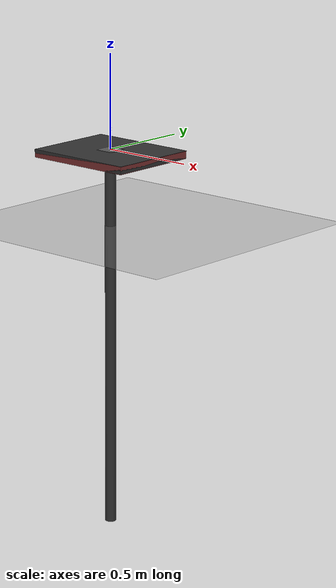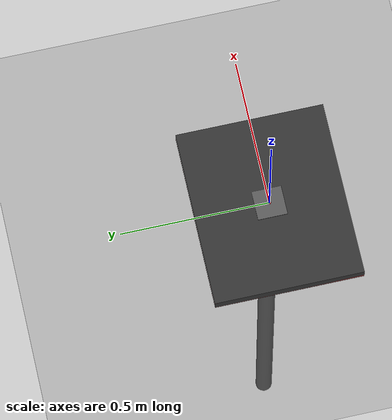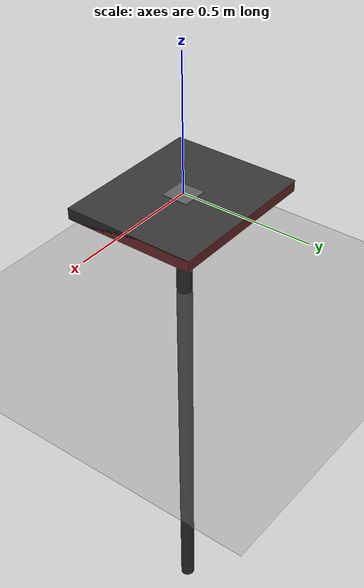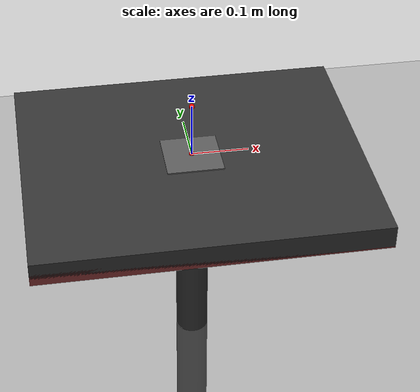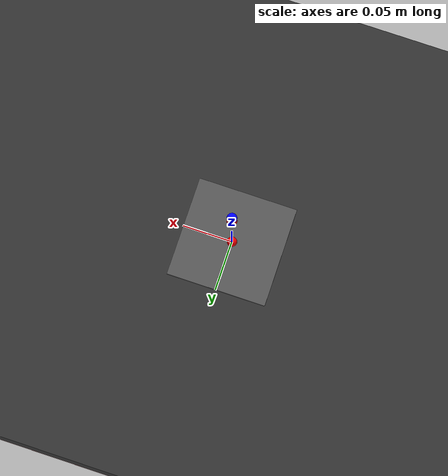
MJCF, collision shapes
<mujoco model="cf2">
  <option density="1.225" viscosity="1.8e-5"/>

  <compiler inertiafromgeom="false" meshdir="assets" autolimits="true" eulerseq="zyx"/>

  <default>
    <default class="cf2">
      <default class="visual">
        <geom group="2" type="mesh" contype="0" conaffinity="0"/>
      </default>
      <default class="collision">
        <geom group="3" type="mesh" contype="1" conaffinity="1"/>
      </default>
      <site group="5"/>
    </default>
  </default>

  <asset>
    <material name="polished_plastic" rgba="0.631 0.659 0.678 1"/>
    <material name="polished_gold" rgba="0.969 0.878 0.6 1"/>
    <material name="medium_gloss_plastic" rgba="0.109 0.184 0.0 1"/>
    <material name="propeller_plastic" rgba="0.792 0.820 0.933 1"/>
    <material name="white" rgba="1 1 1 1"/>
    <material name="body_frame_plastic" rgba="0.102 0.102 0.102 1"/>
    <material name="burnished_chrome" rgba="0.898 0.898 0.898 1"/>

    <mesh file="cf2_0.obj"/>
    <mesh file="cf2_1.obj"/>
    <mesh file="cf2_2.obj"/>
    <mesh file="cf2_3.obj"/>
    <mesh file="cf2_4.obj"/>
    <mesh file="cf2_5.obj"/>
    <mesh file="cf2_6.obj"/>
    <mesh file="cf2_collision_0.obj"/>
    <mesh file="cf2_collision_1.obj"/>
    <mesh file="cf2_collision_2.obj"/>
    <mesh file="cf2_collision_3.obj"/>
    <mesh file="cf2_collision_4.obj"/>
    <mesh file="cf2_collision_5.obj"/>
    <mesh file="cf2_collision_6.obj"/>
    <mesh file="cf2_collision_7.obj"/>
    <mesh file="cf2_collision_8.obj"/>
    <mesh file="cf2_collision_9.obj"/>
    <mesh file="cf2_collision_10.obj"/>
    <mesh file="cf2_collision_11.obj"/>
    <mesh file="cf2_collision_12.obj"/>
    <mesh file="cf2_collision_13.obj"/>
    <mesh file="cf2_collision_14.obj"/>
    <mesh file="cf2_collision_15.obj"/>
    <mesh file="cf2_collision_16.obj"/>
    <mesh file="cf2_collision_17.obj"/>
    <mesh file="cf2_collision_18.obj"/>
    <mesh file="cf2_collision_19.obj"/>
    <mesh file="cf2_collision_20.obj"/>
    <mesh file="cf2_collision_21.obj"/>
    <mesh file="cf2_collision_22.obj"/>
    <mesh file="cf2_collision_23.obj"/>
    <mesh file="cf2_collision_24.obj"/>
    <mesh file="cf2_collision_25.obj"/>
    <mesh file="cf2_collision_26.obj"/>
    <mesh file="cf2_collision_27.obj"/>
    <mesh file="cf2_collision_28.obj"/>
    <mesh file="cf2_collision_29.obj"/>
    <mesh file="cf2_collision_30.obj"/>
    <mesh file="cf2_collision_31.obj"/>
  </asset>

  <worldbody>
    <!-- table -->
    <geom name="table" type="plane" pos="0 0.0 -0.4" size="1 1 0.1" contype="0" conaffinity="0" condim="3"/>
    <!-- platform -->
    <body name="platform_xyz" pos="0.0 0.0 0.0" >
      <freejoint/>
      <inertial euler="0 0 0" pos="0 0 0" mass="1e-06" diaginertia="1e-06 1e-06 1e-06"/>
      <geom name="platform_goal" type="sphere" rgba="1 0 0 1" pos="0 0 0" size="0.005" contype="0" conaffinity="0"/>
      <body name="platform" pos="0.0 0.0 0.0" >
        <inertial euler="0 0 0" pos="0 0 0" mass="1e0" diaginertia="1e0 1e0 1e0"/>
          <geom name="platform_geom" rgba="0.5 0.2 0.2 1" type="box" pos="0 0 -0.025" size="0.30 0.25 0.02" contype="2" conaffinity="1" condim="3"/>
          <joint name="platform_pitch" type="hinge" pos="0 0 0" axis="0 1 0" limited="false" damping="0.5"/>
      </body>
    </body>
    <!-- platform_dist -->
    <body name="_platform_xyz" pos="0.0 0.0 0.0" >
      <freejoint/>
      <inertial euler="0 0 0" pos="0 0 0" mass="1e-06" diaginertia="1e-06 1e-06 1e-06"/>
      <geom name="_platform_goal" type="sphere" rgba="1 0 0 1" pos="0 0 0" size="0.005" contype="0" conaffinity="0"/>
      <geom name="_pole" type="cylinder" pos="0 0 -1.05" size="0.03 1.0" rgba="0.2 0.2 0.2 1" contype="0" conaffinity="0" condim="3"/>
      <body name="_platform" pos="0.0 0.0 0.0" >
        <inertial euler="0 0 0" pos="0 0 0" mass="1e0" diaginertia="1e0 1e0 1e0"/>
          <geom name="_platform_geom" rgba="0.2 0.2 0.2 1" type="box" pos="0 0 -0.0225" size="0.30 0.25 0.02" contype="2" conaffinity="1" condim="3"/>
          <geom name="_patch_geom" rgba="0.35 0.35 0.35 1" type="box" pos="0 0 -0.005" size="0.05 0.05 0.005" contype="0" conaffinity="0" condim="3"/>
          <joint name="_platform_pitch" type="hinge" pos="0 0 0" axis="0 1 0" limited="false" damping="0.5"/>
      </body>
    </body>
    <!-- crazyflie -->
    <body name="cf2" pos="0 0 0.1" childclass="cf2">
      <camera name="track" pos="-1 0 .5" xyaxes="0 -1 0 1 0 2" mode="trackcom"/>
      <freejoint/>
      <inertial pos="0 0 0" mass="0.027" diaginertia="2.3951e-5 2.3951e-5 3.2347e-5"/>
      <geom type="sphere" name="mocap" rgba="1 0 0 1" pos="0 0 0" size="0.005" contype="0" conaffinity= "0"/>
      <body name="cf_mocap" pos="0.0 0.0 0.013" >
        <geom mesh="cf2_0" material="propeller_plastic" class="visual"/>
        <geom mesh="cf2_1" material="medium_gloss_plastic" class="visual"/>
        <geom mesh="cf2_2" material="polished_gold" class="visual"/>
        <geom mesh="cf2_3" material="polished_plastic" class="visual"/>
        <geom mesh="cf2_4" material="burnished_chrome" class="visual"/>
        <geom mesh="cf2_5" material="body_frame_plastic" class="visual"/>
        <geom mesh="cf2_6" material="white" class="visual"/>
        <inertial euler="0 0 0" pos="0 0 0" mass="1e-09" diaginertia="1e-09 1e-09 1e-09"/>
        <joint name="cf_mocap" type="slide" axis="1 0 0" range="-0.01 0.01"/>
        <geom type="sphere" name="" rgba="0 0 1 1" pos="0 0 0." size="0.005" contype="0" conaffinity="0"/>
      </body>
    </body>
  </worldbody>

  <actuator>
    <position joint="_platform_pitch" kp="20" ctrllimited="true" ctrlrange="-3.14 3.14"/>
  </actuator>

</mujoco>
